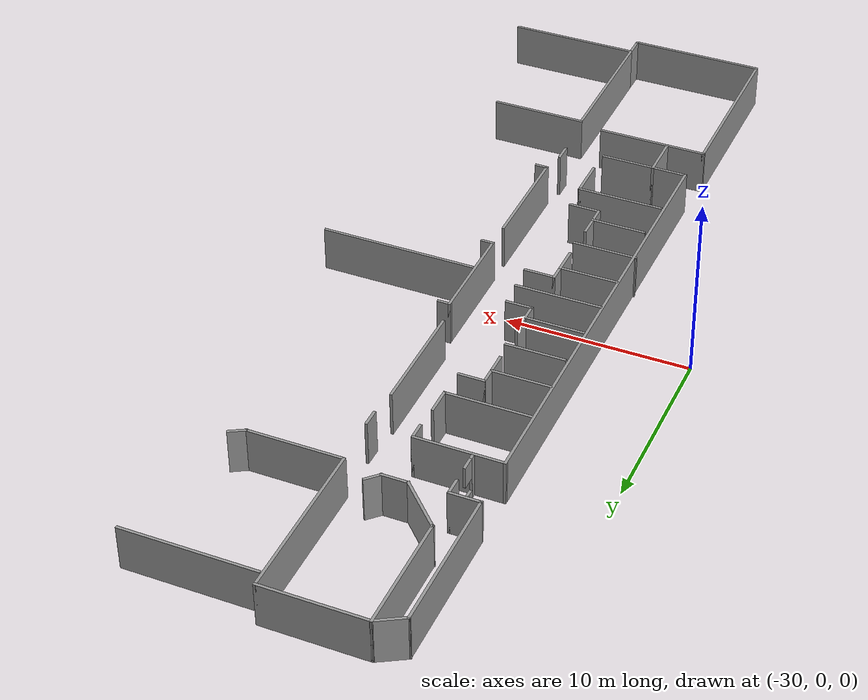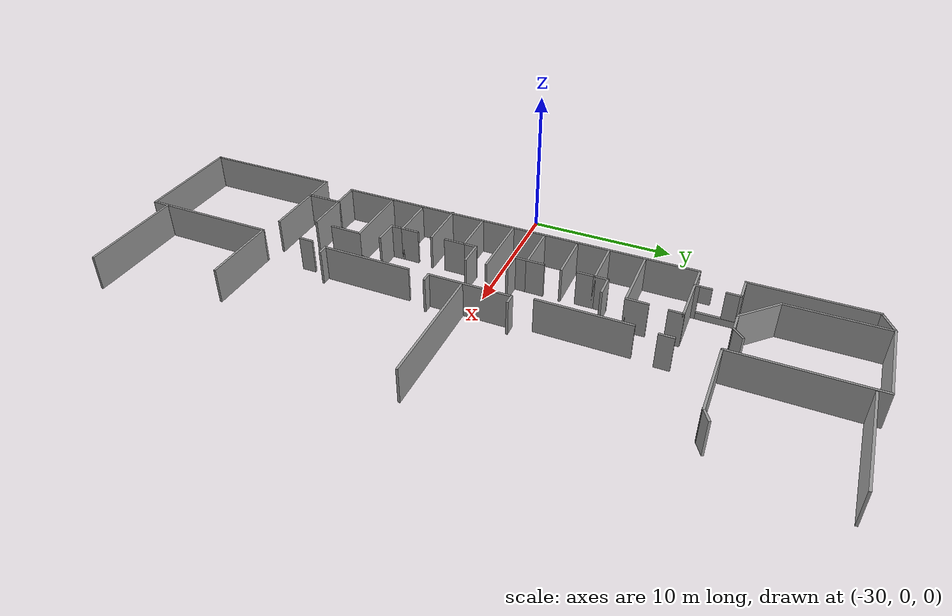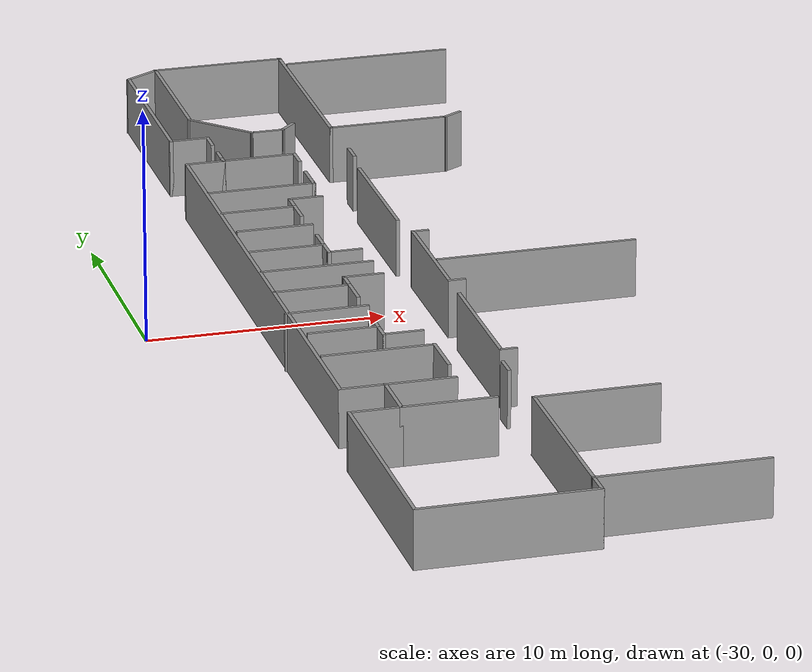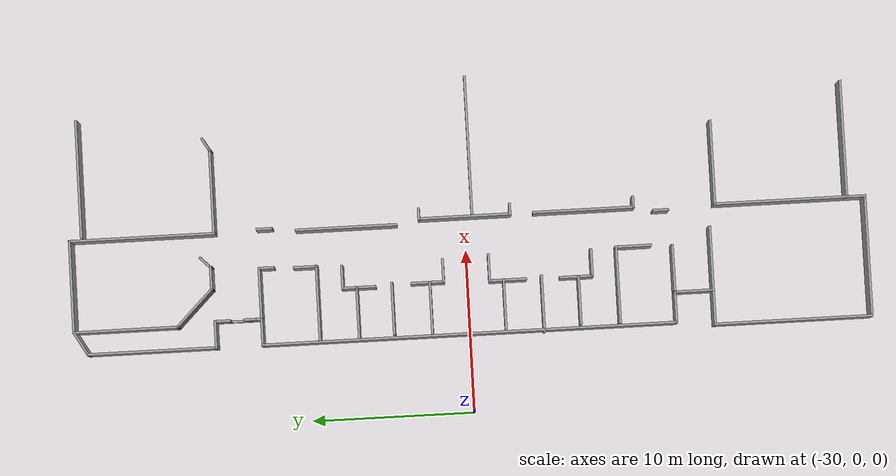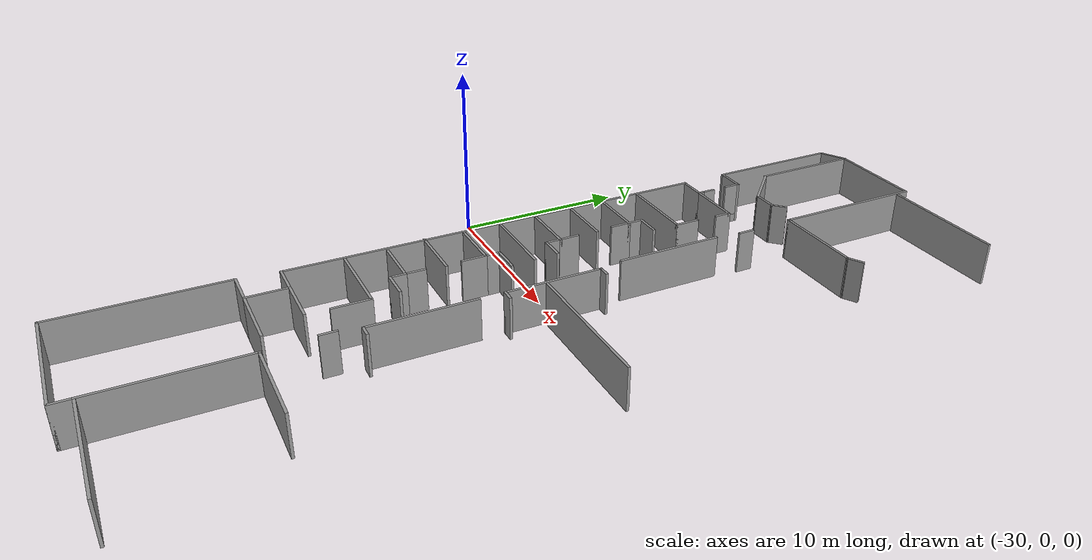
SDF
<sdf version="1.6">
 <model name="Untitled">
  <pose>-0.441057 -0.068194 0 0 -0 0</pose>
  <link name="Wall_268">
   <collision name="Wall_268_Collision">
    <geometry><box><size>1.75 0.15 2.5</size></box></geometry>
    <pose>0 0 1.25 0 -0 0</pose>
   </collision>
   <visual name="Wall_268_Visual">
    <pose>0 0 1.25 0 -0 0</pose>
    <geometry><box><size>1.75 0.15 2.5</size></box></geometry>
    <material>
     <script><uri>file://media/materials/scripts/gazebo.material</uri><name>Gazebo/Grey</name></script>
     <ambient>1 1 1 1</ambient>
    </material>
    <meta><layer>0</layer></meta>
   </visual>
   <pose>-23.9648 12.7736 0 0 -0 3.14159</pose>
  </link>
  <link name="Wall_269">
   <collision name="Wall_269_Collision">
    <geometry><box><size>25.5 0.15 2.5</size></box></geometry>
    <pose>0 0 1.25 0 -0 0</pose>
   </collision>
   <visual name="Wall_269_Visual">
    <pose>0 0 1.25 0 -0 0</pose>
    <geometry><box><size>25.5 0.15 2.5</size></box></geometry>
    <material>
     <script><uri>file://media/materials/scripts/gazebo.material</uri><name>Gazebo/Grey</name></script>
     <ambient>1 1 1 1</ambient>
    </material>
    <meta><layer>0</layer></meta>
   </visual>
   <pose>-24.7648 0.098619 0 0 -0 -1.5708</pose>
  </link>
  <link name="Wall_270">
   <collision name="Wall_270_Collision">
    <geometry><box><size>2 0.15 2.5</size></box></geometry>
    <pose>0 0 1.25 0 -0 0</pose>
   </collision>
   <visual name="Wall_270_Visual">
    <pose>0 0 1.25 0 -0 0</pose>
    <geometry><box><size>2 0.15 2.5</size></box></geometry>
    <material>
     <script><uri>file://media/materials/scripts/gazebo.material</uri><name>Gazebo/Grey</name></script>
     <ambient>1 1 1 1</ambient>
    </material>
    <meta><layer>0</layer></meta>
   </visual>
   <pose>-23.8398 -12.5764 0 0 -0 0</pose>
  </link>
  <link name="Wall_272">
   <collision name="Wall_272_Collision">
    <geometry><box><size>2.5 0.15 2.5</size></box></geometry>
    <pose>0 0 1.25 0 -0 0</pose>
   </collision>
   <visual name="Wall_272_Visual">
    <pose>0 0 1.25 0 -0 0</pose>
    <geometry><box><size>2.5 0.15 2.5</size></box></geometry>
    <material>
     <script><uri>file://media/materials/scripts/gazebo.material</uri><name>Gazebo/Grey</name></script>
     <ambient>1 1 1 1</ambient>
    </material>
    <meta><layer>0</layer></meta>
   </visual>
   <pose>-22.9148 -13.7514 0 0 -0 -1.5708</pose>
  </link>
  <link name="Wall_273">
   <collision name="Wall_273_Collision">
    <geometry><box><size>2.25 0.15 2.5</size></box></geometry>
    <pose>0 0 1.25 0 -0 0</pose>
   </collision>
   <visual name="Wall_273_Visual">
    <pose>0 0 1.25 0 -0 0</pose>
    <geometry><box><size>2.25 0.15 2.5</size></box></geometry>
    <material>
     <script><uri>file://media/materials/scripts/gazebo.material</uri><name>Gazebo/Grey</name></script>
     <ambient>1 1 1 1</ambient>
    </material>
    <meta><layer>0</layer></meta>
   </visual>
   <pose>-23.9648 -14.9264 0 0 -0 3.14159</pose>
  </link>
  <link name="Wall_274">
   <collision name="Wall_274_Collision">
    <geometry><box><size>9.75 0.15 2.5</size></box></geometry>
    <pose>0 0 1.25 0 -0 0</pose>
   </collision>
   <visual name="Wall_274_Visual">
    <pose>0 0 1.25 0 -0 0</pose>
    <geometry><box><size>9.75 0.15 2.5</size></box></geometry>
    <material>
     <script><uri>file://media/materials/scripts/gazebo.material</uri><name>Gazebo/Grey</name></script>
     <ambient>1 1 1 1</ambient>
    </material>
    <meta><layer>0</layer></meta>
   </visual>
   <pose>-25.0148 -19.7264 0 0 -0 -1.5708</pose>
  </link>
  <link name="Wall_276">
   <collision name="Wall_276_Collision">
    <geometry><box><size>7.5 0.15 2.5</size></box></geometry>
    <pose>0 0 1.25 0 -0 0</pose>
   </collision>
   <visual name="Wall_276_Visual">
    <pose>0 0 1.25 0 -0 0</pose>
    <geometry><box><size>7.5 0.15 2.5</size></box></geometry>
    <material>
     <script><uri>file://media/materials/scripts/gazebo.material</uri><name>Gazebo/Grey</name></script>
     <ambient>1 1 1 1</ambient>
    </material>
    <meta><layer>0</layer></meta>
   </visual>
   <pose>-21.3398 -24.5264 0 0 -0 0</pose>
  </link>
  <link name="Wall_277">
   <collision name="Wall_277_Collision">
    <geometry><box><size>1.25 0.15 2.5</size></box></geometry>
    <pose>0 0 1.25 0 -0 0</pose>
   </collision>
   <visual name="Wall_277_Visual">
    <pose>0 0 1.25 0 -0 0</pose>
    <geometry><box><size>1.25 0.15 2.5</size></box></geometry>
    <material>
     <script><uri>file://media/materials/scripts/gazebo.material</uri><name>Gazebo/Grey</name></script>
     <ambient>1 1 1 1</ambient>
    </material>
    <meta><layer>0</layer></meta>
   </visual>
   <pose>-17.6648 -23.9764 0 0 -0 1.5708</pose>
  </link>
  <link name="Wall_278">
   <collision name="Wall_278_Collision">
    <geometry><box><size>7.25 0.15 2.5</size></box></geometry>
    <pose>0 0 1.25 0 -0 0</pose>
   </collision>
   <visual name="Wall_278_Visual">
    <pose>0 0 1.25 0 -0 0</pose>
    <geometry><box><size>7.25 0.15 2.5</size></box></geometry>
    <material>
     <script><uri>file://media/materials/scripts/gazebo.material</uri><name>Gazebo/Grey</name></script>
     <ambient>1 1 1 1</ambient>
    </material>
    <meta><layer>0</layer></meta>
   </visual>
   <pose>-14.1148 -23.4264 0 0 -0 0</pose>
  </link>
  <link name="Wall_333">
   <collision name="Wall_333_Collision">
    <geometry><box><size>8.25 0.15 2.5</size></box></geometry>
    <pose>0 0 1.25 0 -0 0</pose>
   </collision>
   <visual name="Wall_333_Visual">
    <pose>0 0 1.25 0 -0 0</pose>
    <geometry><box><size>8.25 0.15 2.5</size></box></geometry>
    <material>
     <script><uri>file://media/materials/scripts/gazebo.material</uri><name>Gazebo/Grey</name></script>
     <ambient>1 1 1 1</ambient>
    </material>
    <meta><layer>0</layer></meta>
   </visual>
   <pose>-17.6648 -19.3764 0 0 -0 1.5708</pose>
  </link>
  <link name="Wall_334">
   <collision name="Wall_334_Collision">
    <geometry><box><size>5.25 0.15 2.5</size></box></geometry>
    <pose>0 0 1.25 0 -0 0</pose>
   </collision>
   <visual name="Wall_334_Visual">
    <pose>0 0 1.25 0 -0 0</pose>
    <geometry><box><size>5.25 0.15 2.5</size></box></geometry>
    <material>
     <script><uri>file://media/materials/scripts/gazebo.material</uri><name>Gazebo/Grey</name></script>
     <ambient>1 1 1 1</ambient>
    </material>
    <meta><layer>0</layer></meta>
   </visual>
   <pose>-15.1148 -15.3264 0 0 -0 0</pose>
  </link>
  <link name="Wall_336">
   <collision name="Wall_336_Collision">
    <geometry><box><size>4 0.15 2.5</size></box></geometry>
    <pose>0 0 1.25 0 -0 0</pose>
   </collision>
   <visual name="Wall_336_Visual">
    <pose>0 0 1.25 0 -0 0</pose>
    <geometry><box><size>4 0.15 2.5</size></box></geometry>
    <material>
     <script><uri>file://media/materials/scripts/gazebo.material</uri><name>Gazebo/Grey</name></script>
     <ambient>1 1 1 1</ambient>
    </material>
    <meta><layer>0</layer></meta>
   </visual>
   <pose>-20.9898 -14.9264 0 0 -0 0</pose>
  </link>
  <link name="Wall_346">
   <collision name="Wall_346_Collision">
    <geometry><box><size>1 0.15 2.5</size></box></geometry>
    <pose>0 0 1.25 0 -0 0</pose>
   </collision>
   <visual name="Wall_346_Visual">
    <pose>0 0 1.25 0 -0 0</pose>
    <geometry><box><size>1 0.15 2.5</size></box></geometry>
    <material>
     <script><uri>file://media/materials/scripts/gazebo.material</uri><name>Gazebo/Grey</name></script>
     <ambient>1 1 1 1</ambient>
    </material>
    <meta><layer>0</layer></meta>
   </visual>
   <pose>-17.8511 -11.9941 0 0 -0 -1.5708</pose>
  </link>
  <link name="Wall_350">
   <collision name="Wall_350_Collision">
    <geometry><box><size>3 0.15 2.5</size></box></geometry>
    <pose>0 0 1.25 0 -0 0</pose>
   </collision>
   <visual name="Wall_350_Visual">
    <pose>0 0 1.25 0 -0 0</pose>
    <geometry><box><size>3 0.15 2.5</size></box></geometry>
    <material>
     <script><uri>file://media/materials/scripts/gazebo.material</uri><name>Gazebo/Grey</name></script>
     <ambient>1 1 1 1</ambient>
    </material>
    <meta><layer>0</layer></meta>
   </visual>
   <pose>-21.4898 -12.5764 0 0 -0 0</pose>
  </link>
  <link name="Wall_352">
   <collision name="Wall_352_Collision">
    <geometry><box><size>4.75 0.15 2.5</size></box></geometry>
    <pose>0 0 1.25 0 -0 0</pose>
   </collision>
   <visual name="Wall_352_Visual">
    <pose>0 0 1.25 0 -0 0</pose>
    <geometry><box><size>4.75 0.15 2.5</size></box></geometry>
    <material>
     <script><uri>file://media/materials/scripts/gazebo.material</uri><name>Gazebo/Grey</name></script>
     <ambient>1 1 1 1</ambient>
    </material>
    <meta><layer>0</layer></meta>
   </visual>
   <pose>-22.2641 -9.1343 0 0 -0 0</pose>
  </link>
  <link name="Wall_353">
   <collision name="Wall_353_Collision">
    <geometry><box><size>2.25 0.15 2.5</size></box></geometry>
    <pose>0 0 1.25 0 -0 0</pose>
   </collision>
   <visual name="Wall_353_Visual">
    <pose>0 0 1.25 0 -0 0</pose>
    <geometry><box><size>2.25 0.15 2.5</size></box></geometry>
    <material>
     <script><uri>file://media/materials/scripts/gazebo.material</uri><name>Gazebo/Grey</name></script>
     <ambient>1 1 1 1</ambient>
    </material>
    <meta><layer>0</layer></meta>
   </visual>
   <pose>-19.9641 -10.1843 0 0 -0 -1.5708</pose>
  </link>
  <link name="Wall_355">
   <collision name="Wall_355_Collision">
    <geometry><box><size>3 0.15 2.5</size></box></geometry>
    <pose>0 0 1.25 0 -0 0</pose>
   </collision>
   <visual name="Wall_355_Visual">
    <pose>0 0 1.25 0 -0 0</pose>
    <geometry><box><size>3 0.15 2.5</size></box></geometry>
    <material>
     <script><uri>file://media/materials/scripts/gazebo.material</uri><name>Gazebo/Grey</name></script>
     <ambient>1 1 1 1</ambient>
    </material>
    <meta><layer>0</layer></meta>
   </visual>
   <pose>-23.0695 -6.7343 0 0 -0 0</pose>
  </link>
  <link name="Wall_356">
   <collision name="Wall_356_Collision">
    <geometry><box><size>1.25 0.15 2.5</size></box></geometry>
    <pose>0 0 1.25 0 -0 0</pose>
   </collision>
   <visual name="Wall_356_Visual">
    <pose>0 0 1.25 0 -0 0</pose>
    <geometry><box><size>1.25 0.15 2.5</size></box></geometry>
    <material>
     <script><uri>file://media/materials/scripts/gazebo.material</uri><name>Gazebo/Grey</name></script>
     <ambient>1 1 1 1</ambient>
    </material>
    <meta><layer>0</layer></meta>
   </visual>
   <pose>-21.6445 -6.1843 0 0 -0 1.5708</pose>
  </link>
  <link name="Wall_358">
   <collision name="Wall_358_Collision">
    <geometry><box><size>1 0.15 2.5</size></box></geometry>
    <pose>0 0 1.25 0 -0 0</pose>
   </collision>
   <visual name="Wall_358_Visual">
    <pose>0 0 1.25 0 -0 0</pose>
    <geometry><box><size>1 0.15 2.5</size></box></geometry>
    <material>
     <script><uri>file://media/materials/scripts/gazebo.material</uri><name>Gazebo/Grey</name></script>
     <ambient>1 1 1 1</ambient>
    </material>
    <meta><layer>0</layer></meta>
   </visual>
   <pose>-21.6445 -7.1593 0 0 -0 -1.5708</pose>
  </link>
  <link name="Wall_359">
   <collision name="Wall_359_Collision">
    <geometry><box><size>1.75 0.15 2.5</size></box></geometry>
    <pose>0 0 1.25 0 -0 0</pose>
   </collision>
   <visual name="Wall_359_Visual">
    <pose>0 0 1.25 0 -0 0</pose>
    <geometry><box><size>1.75 0.15 2.5</size></box></geometry>
    <material>
     <script><uri>file://media/materials/scripts/gazebo.material</uri><name>Gazebo/Grey</name></script>
     <ambient>1 1 1 1</ambient>
    </material>
    <meta><layer>0</layer></meta>
   </visual>
   <pose>-20.8445 -7.5843 0 0 -0 0</pose>
  </link>
  <link name="Wall_361">
   <collision name="Wall_361_Collision">
    <geometry><box><size>6.25 0.15 2.5</size></box></geometry>
    <pose>0 0 1.25 0 -0 0</pose>
   </collision>
   <visual name="Wall_361_Visual">
    <pose>0 0 1.25 0 -0 0</pose>
    <geometry><box><size>6.25 0.15 2.5</size></box></geometry>
    <material>
     <script><uri>file://media/materials/scripts/gazebo.material</uri><name>Gazebo/Grey</name></script>
     <ambient>1 1 1 1</ambient>
    </material>
    <meta><layer>0</layer></meta>
   </visual>
   <pose>-17.5728 -7.27995 0 0 -0 -1.5708</pose>
  </link>
  <link name="Wall_362">
   <collision name="Wall_362_Collision">
    <geometry><box><size>0.75 0.15 2.5</size></box></geometry>
    <pose>0 0 1.25 0 -0 0</pose>
   </collision>
   <visual name="Wall_362_Visual">
    <pose>0 0 1.25 0 -0 0</pose>
    <geometry><box><size>0.75 0.15 2.5</size></box></geometry>
    <material>
     <script><uri>file://media/materials/scripts/gazebo.material</uri><name>Gazebo/Grey</name></script>
     <ambient>1 1 1 1</ambient>
    </material>
    <meta><layer>0</layer></meta>
   </visual>
   <pose>-17.2728 -10.33 0 0 -0 0</pose>
  </link>
  <link name="Wall_367">
   <collision name="Wall_367_Collision">
    <geometry><box><size>3.5 0.15 2.5</size></box></geometry>
    <pose>0 0 1.25 0 -0 0</pose>
   </collision>
   <visual name="Wall_367_Visual">
    <pose>0 0 1.25 0 -0 0</pose>
    <geometry><box><size>3.5 0.15 2.5</size></box></geometry>
    <material>
     <script><uri>file://media/materials/scripts/gazebo.material</uri><name>Gazebo/Grey</name></script>
     <ambient>1 1 1 1</ambient>
    </material>
    <meta><layer>0</layer></meta>
   </visual>
   <pose>-23.1674 -4.47343 0 0 -0 0</pose>
  </link>
  <link name="Wall_369">
   <collision name="Wall_369_Collision">
    <geometry><box><size>3.25 0.15 2.5</size></box></geometry>
    <pose>0 0 1.25 0 -0 0</pose>
   </collision>
   <visual name="Wall_369_Visual">
    <pose>0 0 1.25 0 -0 0</pose>
    <geometry><box><size>3.25 0.15 2.5</size></box></geometry>
    <material>
     <script><uri>file://media/materials/scripts/gazebo.material</uri><name>Gazebo/Grey</name></script>
     <ambient>1 1 1 1</ambient>
    </material>
    <meta><layer>0</layer></meta>
   </visual>
   <pose>-23.1532 -2.14299 0 0 -0 0</pose>
  </link>
  <link name="Wall_370">
   <collision name="Wall_370_Collision">
    <geometry><box><size>1.5 0.15 2.5</size></box></geometry>
    <pose>0 0 1.25 0 -0 0</pose>
   </collision>
   <visual name="Wall_370_Visual">
    <pose>0 0 1.25 0 -0 0</pose>
    <geometry><box><size>1.5 0.15 2.5</size></box></geometry>
    <material>
     <script><uri>file://media/materials/scripts/gazebo.material</uri><name>Gazebo/Grey</name></script>
     <ambient>1 1 1 1</ambient>
    </material>
    <meta><layer>0</layer></meta>
   </visual>
   <pose>-21.6032 -2.81799 0 0 -0 -1.5708</pose>
  </link>
  <link name="Wall_372">
   <collision name="Wall_372_Collision">
    <geometry><box><size>1 0.15 2.5</size></box></geometry>
    <pose>0 0 1.25 0 -0 0</pose>
   </collision>
   <visual name="Wall_372_Visual">
    <pose>0 0 1.25 0 -0 0</pose>
    <geometry><box><size>1 0.15 2.5</size></box></geometry>
    <material>
     <script><uri>file://media/materials/scripts/gazebo.material</uri><name>Gazebo/Grey</name></script>
     <ambient>1 1 1 1</ambient>
    </material>
    <meta><layer>0</layer></meta>
   </visual>
   <pose>-21.6032 -1.71799 0 0 -0 1.5708</pose>
  </link>
  <link name="Wall_373">
   <collision name="Wall_373_Collision">
    <geometry><box><size>1.75 0.15 2.5</size></box></geometry>
    <pose>0 0 1.25 0 -0 0</pose>
   </collision>
   <visual name="Wall_373_Visual">
    <pose>0 0 1.25 0 -0 0</pose>
    <geometry><box><size>1.75 0.15 2.5</size></box></geometry>
    <material>
     <script><uri>file://media/materials/scripts/gazebo.material</uri><name>Gazebo/Grey</name></script>
     <ambient>1 1 1 1</ambient>
    </material>
    <meta><layer>0</layer></meta>
   </visual>
   <pose>-20.8032 -1.29299 0 0 -0 0</pose>
  </link>
  <link name="Wall_375">
   <collision name="Wall_375_Collision">
    <geometry><box><size>4.75 0.15 2.5</size></box></geometry>
    <pose>0 0 1.25 0 -0 0</pose>
   </collision>
   <visual name="Wall_375_Visual">
    <pose>0 0 1.25 0 -0 0</pose>
    <geometry><box><size>4.75 0.15 2.5</size></box></geometry>
    <material>
     <script><uri>file://media/materials/scripts/gazebo.material</uri><name>Gazebo/Grey</name></script>
     <ambient>1 1 1 1</ambient>
    </material>
    <meta><layer>0</layer></meta>
   </visual>
   <pose>-22.3685 0.117874 0 0 -0 0</pose>
  </link>
  <link name="Wall_377">
   <collision name="Wall_377_Collision">
    <geometry><box><size>3.25 0.15 2.5</size></box></geometry>
    <pose>0 0 1.25 0 -0 0</pose>
   </collision>
   <visual name="Wall_377_Visual">
    <pose>0 0 1.25 0 -0 0</pose>
    <geometry><box><size>3.25 0.15 2.5</size></box></geometry>
    <material>
     <script><uri>file://media/materials/scripts/gazebo.material</uri><name>Gazebo/Grey</name></script>
     <ambient>1 1 1 1</ambient>
    </material>
    <meta><layer>0</layer></meta>
   </visual>
   <pose>-23.0489 2.37874 0 0 -0 0</pose>
  </link>
  <link name="Wall_378">
   <collision name="Wall_378_Collision">
    <geometry><box><size>1.25 0.15 2.5</size></box></geometry>
    <pose>0 0 1.25 0 -0 0</pose>
   </collision>
   <visual name="Wall_378_Visual">
    <pose>0 0 1.25 0 -0 0</pose>
    <geometry><box><size>1.25 0.15 2.5</size></box></geometry>
    <material>
     <script><uri>file://media/materials/scripts/gazebo.material</uri><name>Gazebo/Grey</name></script>
     <ambient>1 1 1 1</ambient>
    </material>
    <meta><layer>0</layer></meta>
   </visual>
   <pose>-21.4989 2.92874 0 0 -0 1.5708</pose>
  </link>
  <link name="Wall_380">
   <collision name="Wall_380_Collision">
    <geometry><box><size>1 0.15 2.5</size></box></geometry>
    <pose>0 0 1.25 0 -0 0</pose>
   </collision>
   <visual name="Wall_380_Visual">
    <pose>0 0 1.25 0 -0 0</pose>
    <geometry><box><size>1 0.15 2.5</size></box></geometry>
    <material>
     <script><uri>file://media/materials/scripts/gazebo.material</uri><name>Gazebo/Grey</name></script>
     <ambient>1 1 1 1</ambient>
    </material>
    <meta><layer>0</layer></meta>
   </visual>
   <pose>-21.4989 1.95374 0 0 -0 -1.5708</pose>
  </link>
  <link name="Wall_381">
   <collision name="Wall_381_Collision">
    <geometry><box><size>1.5 0.15 2.5</size></box></geometry>
    <pose>0 0 1.25 0 -0 0</pose>
   </collision>
   <visual name="Wall_381_Visual">
    <pose>0 0 1.25 0 -0 0</pose>
    <geometry><box><size>1.5 0.15 2.5</size></box></geometry>
    <material>
     <script><uri>file://media/materials/scripts/gazebo.material</uri><name>Gazebo/Grey</name></script>
     <ambient>1 1 1 1</ambient>
    </material>
    <meta><layer>0</layer></meta>
   </visual>
   <pose>-20.8239 1.52874 0 0 -0 0</pose>
  </link>
  <link name="Wall_383">
   <collision name="Wall_383_Collision">
    <geometry><box><size>3.25 0.15 2.5</size></box></geometry>
    <pose>0 0 1.25 0 -0 0</pose>
   </collision>
   <visual name="Wall_383_Visual">
    <pose>0 0 1.25 0 -0 0</pose>
    <geometry><box><size>3.25 0.15 2.5</size></box></geometry>
    <material>
     <script><uri>file://media/materials/scripts/gazebo.material</uri><name>Gazebo/Grey</name></script>
     <ambient>1 1 1 1</ambient>
    </material>
    <meta><layer>0</layer></meta>
   </visual>
   <pose>-22.9793 4.70918 0 0 -0 0</pose>
  </link>
  <link name="Wall_385">
   <collision name="Wall_385_Collision">
    <geometry><box><size>3.25 0.15 2.5</size></box></geometry>
    <pose>0 0 1.25 0 -0 0</pose>
   </collision>
   <visual name="Wall_385_Visual">
    <pose>0 0 1.25 0 -0 0</pose>
    <geometry><box><size>3.25 0.15 2.5</size></box></geometry>
    <material>
     <script><uri>file://media/materials/scripts/gazebo.material</uri><name>Gazebo/Grey</name></script>
     <ambient>1 1 1 1</ambient>
    </material>
    <meta><layer>0</layer></meta>
   </visual>
   <pose>-23.1185 6.8657 0 0 -0 0</pose>
  </link>
  <link name="Wall_386">
   <collision name="Wall_386_Collision">
    <geometry><box><size>1 0.15 2.5</size></box></geometry>
    <pose>0 0 1.25 0 -0 0</pose>
   </collision>
   <visual name="Wall_386_Visual">
    <pose>0 0 1.25 0 -0 0</pose>
    <geometry><box><size>1 0.15 2.5</size></box></geometry>
    <material>
     <script><uri>file://media/materials/scripts/gazebo.material</uri><name>Gazebo/Grey</name></script>
     <ambient>1 1 1 1</ambient>
    </material>
    <meta><layer>0</layer></meta>
   </visual>
   <pose>-21.5685 7.2907 0 0 -0 1.5708</pose>
  </link>
  <link name="Wall_387">
   <collision name="Wall_387_Collision">
    <geometry><box><size>1.5 0.15 2.5</size></box></geometry>
    <pose>0 0 1.25 0 -0 0</pose>
   </collision>
   <visual name="Wall_387_Visual">
    <pose>0 0 1.25 0 -0 0</pose>
    <geometry><box><size>1.5 0.15 2.5</size></box></geometry>
    <material>
     <script><uri>file://media/materials/scripts/gazebo.material</uri><name>Gazebo/Grey</name></script>
     <ambient>1 1 1 1</ambient>
    </material>
    <meta><layer>0</layer></meta>
   </visual>
   <pose>-20.8935 7.7157 0 0 -0 0</pose>
  </link>
  <link name="Wall_389">
   <collision name="Wall_389_Collision">
    <geometry><box><size>1.25 0.15 2.5</size></box></geometry>
    <pose>0 0 1.25 0 -0 0</pose>
   </collision>
   <visual name="Wall_389_Visual">
    <pose>0 0 1.25 0 -0 0</pose>
    <geometry><box><size>1.25 0.15 2.5</size></box></geometry>
    <material>
     <script><uri>file://media/materials/scripts/gazebo.material</uri><name>Gazebo/Grey</name></script>
     <ambient>1 1 1 1</ambient>
    </material>
    <meta><layer>0</layer></meta>
   </visual>
   <pose>-21.5685 6.3157 0 0 -0 -1.5708</pose>
  </link>
  <link name="Wall_393">
   <collision name="Wall_393_Collision">
    <geometry><box><size>4.75 0.15 2.5</size></box></geometry>
    <pose>0 0 1.25 0 -0 0</pose>
   </collision>
   <visual name="Wall_393_Visual">
    <pose>0 0 1.25 0 -0 0</pose>
    <geometry><box><size>4.75 0.15 2.5</size></box></geometry>
    <material>
     <script><uri>file://media/materials/scripts/gazebo.material</uri><name>Gazebo/Grey</name></script>
     <ambient>1 1 1 1</ambient>
    </material>
    <meta><layer>0</layer></meta>
   </visual>
   <pose>-22.438 9.2657 0 0 -0 0</pose>
  </link>
  <link name="Wall_394">
   <collision name="Wall_394_Collision">
    <geometry><box><size>1.5 0.15 2.5</size></box></geometry>
    <pose>0 0 1.25 0 -0 0</pose>
   </collision>
   <visual name="Wall_394_Visual">
    <pose>0 0 1.25 0 -0 0</pose>
    <geometry><box><size>1.5 0.15 2.5</size></box></geometry>
    <material>
     <script><uri>file://media/materials/scripts/gazebo.material</uri><name>Gazebo/Grey</name></script>
     <ambient>1 1 1 1</ambient>
    </material>
    <meta><layer>0</layer></meta>
   </visual>
   <pose>-20.138 9.9407 0 0 -0 1.5708</pose>
  </link>
  <link name="Wall_396">
   <collision name="Wall_396_Collision">
    <geometry><box><size>3.25 0.15 2.5</size></box></geometry>
    <pose>0 0 1.25 0 -0 0</pose>
   </collision>
   <visual name="Wall_396_Visual">
    <pose>0 0 1.25 0 -0 0</pose>
    <geometry><box><size>3.25 0.15 2.5</size></box></geometry>
    <material>
     <script><uri>file://media/materials/scripts/gazebo.material</uri><name>Gazebo/Grey</name></script>
     <ambient>1 1 1 1</ambient>
    </material>
    <meta><layer>0</layer></meta>
   </visual>
   <pose>-21.6148 12.7736 0 0 -0 0</pose>
  </link>
  <link name="Wall_400">
   <collision name="Wall_400_Collision">
    <geometry><box><size>1 0.15 2.5</size></box></geometry>
    <pose>0 0 1.25 0 -0 0</pose>
   </collision>
   <visual name="Wall_400_Visual">
    <pose>0 0 1.25 0 -0 0</pose>
    <geometry><box><size>1 0.15 2.5</size></box></geometry>
    <material>
     <script><uri>file://media/materials/scripts/gazebo.material</uri><name>Gazebo/Grey</name></script>
     <ambient>1 1 1 1</ambient>
    </material>
    <meta><layer>0</layer></meta>
   </visual>
   <pose>-20.0648 12.3486 0 0 -0 -1.5708</pose>
  </link>
  <link name="Wall_402">
   <pose>-23.1648 14.1986 0 0 -0 1.5708</pose>
   <visual name="Wall_402_Visual_0">
    <pose>-1.29472 0 1.25 0 -0 0</pose>
    <geometry><box><size>0.41056 0.15 2.5</size></box></geometry>
    <material>
     <script><uri>file://media/materials/scripts/gazebo.material</uri><name>Gazebo/Grey</name></script>
     <ambient>1 1 1 1</ambient>
    </material>
    <meta><layer>0</layer></meta>
   </visual>
   <collision name="Wall_402_Collision_0">
    <geometry><box><size>0.41056 0.15 2.5</size></box></geometry>
    <pose>-1.29472 0 1.25 0 -0 0</pose>
   </collision>
   <visual name="Wall_402_Visual_1">
    <pose>0.20528 0 0.25 0 -0 0</pose>
    <geometry><box><size>2.58944 0.15 0.5</size></box></geometry>
    <material>
     <script><uri>file://media/materials/scripts/gazebo.material</uri><name>Gazebo/Grey</name></script>
     <ambient>1 1 1 1</ambient>
    </material>
    <meta><layer>0</layer></meta>
   </visual>
   <collision name="Wall_402_Collision_1">
    <geometry><box><size>2.58944 0.15 0.5</size></box></geometry>
    <pose>0.20528 0 0.25 0 -0 0</pose>
   </collision>
   <visual name="Wall_402_Visual_2">
    <pose>0.987889 0 1.5 0 -0 0</pose>
    <geometry><box><size>1.02422 0.15 2</size></box></geometry>
    <material>
     <script><uri>file://media/materials/scripts/gazebo.material</uri><name>Gazebo/Grey</name></script>
     <ambient>1 1 1 1</ambient>
    </material>
    <meta><layer>0</layer></meta>
   </visual>
   <collision name="Wall_402_Collision_2">
    <geometry><box><size>1.02422 0.15 2</size></box></geometry>
    <pose>0.987889 0 1.5 0 -0 0</pose>
   </collision>
   <visual name="Wall_402_Visual_3">
    <pose>-0.706831 0 1.9 0 -0 0</pose>
    <geometry><box><size>0.765217 0.15 1.2</size></box></geometry>
    <material>
     <script><uri>file://media/materials/scripts/gazebo.material</uri><name>Gazebo/Grey</name></script>
     <ambient>1 1 1 1</ambient>
    </material>
    <meta><layer>0</layer></meta>
   </visual>
   <collision name="Wall_402_Collision_3">
    <geometry><box><size>0.765217 0.15 1.2</size></box></geometry>
    <pose>-0.706831 0 1.9 0 -0 0</pose>
   </collision>
  </link>
  <link name="Wall_403">
   <collision name="Wall_403_Collision">
    <geometry><box><size>1.75 0.15 2.5</size></box></geometry>
    <pose>0 0 1.25 0 -0 0</pose>
   </collision>
   <visual name="Wall_403_Visual">
    <pose>0 0 1.25 0 -0 0</pose>
    <geometry><box><size>1.75 0.15 2.5</size></box></geometry>
    <material>
     <script><uri>file://media/materials/scripts/gazebo.material</uri><name>Gazebo/Grey</name></script>
     <ambient>1 1 1 1</ambient>
    </material>
    <meta><layer>0</layer></meta>
   </visual>
   <pose>-23.9648 15.6236 0 0 -0 3.14159</pose>
  </link>
  <link name="Wall_405">
   <collision name="Wall_405_Collision">
    <geometry><box><size>8 0.15 2.5</size></box></geometry>
    <pose>0 0 1.25 0 -0 0</pose>
   </collision>
   <visual name="Wall_405_Visual">
    <pose>0 0 1.25 0 -0 0</pose>
    <geometry><box><size>8 0.15 2.5</size></box></geometry>
    <material>
     <script><uri>file://media/materials/scripts/gazebo.material</uri><name>Gazebo/Grey</name></script>
     <ambient>1 1 1 1</ambient>
    </material>
    <meta><layer>0</layer></meta>
   </visual>
   <pose>-24.7648 19.5486 0 0 -0 1.5708</pose>
  </link>
  <link name="Wall_406">
   <collision name="Wall_406_Collision">
    <geometry><box><size>1.75 0.15 2.5</size></box></geometry>
    <pose>0 0 1.25 0 -0 0</pose>
   </collision>
   <visual name="Wall_406_Visual">
    <pose>0 0 1.25 0 -0 0</pose>
    <geometry><box><size>1.75 0.15 2.5</size></box></geometry>
    <material>
     <script><uri>file://media/materials/scripts/gazebo.material</uri><name>Gazebo/Grey</name></script>
     <ambient>1 1 1 1</ambient>
    </material>
    <meta><layer>0</layer></meta>
   </visual>
   <pose>-24.072 23.8736 0 0 -0 0.523599</pose>
  </link>
  <link name="Wall_407">
   <collision name="Wall_407_Collision">
    <geometry><box><size>6.5 0.15 2.5</size></box></geometry>
    <pose>0 0 1.25 0 -0 0</pose>
   </collision>
   <visual name="Wall_407_Visual">
    <pose>0 0 1.25 0 -0 0</pose>
    <geometry><box><size>6.5 0.15 2.5</size></box></geometry>
    <material>
     <script><uri>file://media/materials/scripts/gazebo.material</uri><name>Gazebo/Grey</name></script>
     <ambient>1 1 1 1</ambient>
    </material>
    <meta><layer>0</layer></meta>
   </visual>
   <pose>-23.3791 21.0986 0 0 -0 -1.5708</pose>
  </link>
  <link name="Wall_408">
   <collision name="Wall_408_Collision">
    <geometry><box><size>3.25 0.15 2.5</size></box></geometry>
    <pose>0 0 1.25 0 -0 0</pose>
   </collision>
   <visual name="Wall_408_Visual">
    <pose>0 0 1.25 0 -0 0</pose>
    <geometry><box><size>3.25 0.15 2.5</size></box></geometry>
    <material>
     <script><uri>file://media/materials/scripts/gazebo.material</uri><name>Gazebo/Grey</name></script>
     <ambient>1 1 1 1</ambient>
    </material>
    <meta><layer>0</layer></meta>
   </visual>
   <pose>-22.2831 16.8276 0 0 -0 -0.785398</pose>
  </link>
  <link name="Wall_409">
   <collision name="Wall_409_Collision">
    <geometry><box><size>1.5 0.15 2.5</size></box></geometry>
    <pose>0 0 1.25 0 -0 0</pose>
   </collision>
   <visual name="Wall_409_Visual">
    <pose>0 0 1.25 0 -0 0</pose>
    <geometry><box><size>1.5 0.15 2.5</size></box></geometry>
    <material>
     <script><uri>file://media/materials/scripts/gazebo.material</uri><name>Gazebo/Grey</name></script>
     <ambient>1 1 1 1</ambient>
    </material>
    <meta><layer>0</layer></meta>
   </visual>
   <pose>-20.5121 15.7316 0 0 -0 0</pose>
  </link>
  <link name="Wall_410">
   <collision name="Wall_410_Collision">
    <geometry><box><size>1 0.15 2.5</size></box></geometry>
    <pose>0 0 1.25 0 -0 0</pose>
   </collision>
   <visual name="Wall_410_Visual">
    <pose>0 0 1.25 0 -0 0</pose>
    <geometry><box><size>1 0.15 2.5</size></box></geometry>
    <material>
     <script><uri>file://media/materials/scripts/gazebo.material</uri><name>Gazebo/Grey</name></script>
     <ambient>1 1 1 1</ambient>
    </material>
    <meta><layer>0</layer></meta>
   </visual>
   <pose>-19.5366 16.0321 0 0 -0 0.785398</pose>
  </link>
  <link name="Wall_412">
   <collision name="Wall_412_Collision">
    <geometry><box><size>5.75 0.15 2.5</size></box></geometry>
    <pose>0 0 1.25 0 -0 0</pose>
   </collision>
   <visual name="Wall_412_Visual">
    <pose>0 0 1.25 0 -0 0</pose>
    <geometry><box><size>5.75 0.15 2.5</size></box></geometry>
    <material>
     <script><uri>file://media/materials/scripts/gazebo.material</uri><name>Gazebo/Grey</name></script>
     <ambient>1 1 1 1</ambient>
    </material>
    <meta><layer>0</layer></meta>
   </visual>
   <pose>-20.5791 24.2736 0 0 -0 0</pose>
  </link>
  <link name="Wall_413">
   <collision name="Wall_413_Collision">
    <geometry><box><size>9 0.15 2.5</size></box></geometry>
    <pose>0 0 1.25 0 -0 0</pose>
   </collision>
   <visual name="Wall_413_Visual">
    <pose>0 0 1.25 0 -0 0</pose>
    <geometry><box><size>9 0.15 2.5</size></box></geometry>
    <material>
     <script><uri>file://media/materials/scripts/gazebo.material</uri><name>Gazebo/Grey</name></script>
     <ambient>1 1 1 1</ambient>
    </material>
    <meta><layer>0</layer></meta>
   </visual>
   <pose>-17.7791 19.8486 0 0 -0 -1.5708</pose>
  </link>
  <link name="Wall_415">
   <collision name="Wall_415_Collision">
    <geometry><box><size>7.25 0.15 2.5</size></box></geometry>
    <pose>0 0 1.25 0 -0 0</pose>
   </collision>
   <visual name="Wall_415_Visual">
    <pose>0 0 1.25 0 -0 0</pose>
    <geometry><box><size>7.25 0.15 2.5</size></box></geometry>
    <material>
     <script><uri>file://media/materials/scripts/gazebo.material</uri><name>Gazebo/Grey</name></script>
     <ambient>1 1 1 1</ambient>
    </material>
    <meta><layer>0</layer></meta>
   </visual>
   <pose>-14.0228 23.5266 0 0 -0 0</pose>
  </link>
  <link name="Wall_422">
   <collision name="Wall_422_Collision">
    <geometry><box><size>5.25 0.15 2.5</size></box></geometry>
    <pose>0 0 1.25 0 -0 0</pose>
   </collision>
   <visual name="Wall_422_Visual">
    <pose>0 0 1.25 0 -0 0</pose>
    <geometry><box><size>5.25 0.15 2.5</size></box></geometry>
    <material>
     <script><uri>file://media/materials/scripts/gazebo.material</uri><name>Gazebo/Grey</name></script>
     <ambient>1 1 1 1</ambient>
    </material>
    <meta><layer>0</layer></meta>
   </visual>
   <pose>-15.2291 15.4236 0 0 -0 0</pose>
  </link>
  <link name="Wall_423">
   <collision name="Wall_423_Collision">
    <geometry><box><size>1 0.15 2.5</size></box></geometry>
    <pose>0 0 1.25 0 -0 0</pose>
   </collision>
   <visual name="Wall_423_Visual">
    <pose>0 0 1.25 0 -0 0</pose>
    <geometry><box><size>1 0.15 2.5</size></box></geometry>
    <material>
     <script><uri>file://media/materials/scripts/gazebo.material</uri><name>Gazebo/Grey</name></script>
     <ambient>1 1 1 1</ambient>
    </material>
    <meta><layer>0</layer></meta>
   </visual>
   <pose>-12.3111 15.6361 0 0 -0 0.523599</pose>
  </link>
  <link name="Wall_501">
   <collision name="Wall_501_Collision">
    <geometry><box><size>0.75 0.15 2.5</size></box></geometry>
    <pose>0 0 1.25 0 -0 0</pose>
   </collision>
   <visual name="Wall_501_Visual">
    <pose>0 0 1.25 0 -0 0</pose>
    <geometry><box><size>0.75 0.15 2.5</size></box></geometry>
    <material>
     <script><uri>file://media/materials/scripts/gazebo.material</uri><name>Gazebo/Grey</name></script>
     <ambient>1 1 1 1</ambient>
    </material>
    <meta><layer>0</layer></meta>
   </visual>
   <pose>-17.2731 2.83573 0 0 -0 3.14159</pose>
  </link>
  <link name="Wall_502">
   <collision name="Wall_502_Collision">
    <geometry><box><size>5.75 0.15 2.5</size></box></geometry>
    <pose>0 0 1.25 0 -0 0</pose>
   </collision>
   <visual name="Wall_502_Visual">
    <pose>0 0 1.25 0 -0 0</pose>
    <geometry><box><size>5.75 0.15 2.5</size></box></geometry>
    <material>
     <script><uri>file://media/materials/scripts/gazebo.material</uri><name>Gazebo/Grey</name></script>
     <ambient>1 1 1 1</ambient>
    </material>
    <meta><layer>0</layer></meta>
   </visual>
   <pose>-17.5731 0.035729 0 0 -0 -1.5708</pose>
  </link>
  <link name="Wall_503">
   <collision name="Wall_503_Collision">
    <geometry><box><size>0.75 0.15 2.5</size></box></geometry>
    <pose>0 0 1.25 0 -0 0</pose>
   </collision>
   <visual name="Wall_503_Visual">
    <pose>0 0 1.25 0 -0 0</pose>
    <geometry><box><size>0.75 0.15 2.5</size></box></geometry>
    <material>
     <script><uri>file://media/materials/scripts/gazebo.material</uri><name>Gazebo/Grey</name></script>
     <ambient>1 1 1 1</ambient>
    </material>
    <meta><layer>0</layer></meta>
   </visual>
   <pose>-17.2731 -2.76427 0 0 -0 0</pose>
  </link>
  <link name="Wall_510">
   <collision name="Wall_510_Collision">
    <geometry><box><size>8.5 0.15 2.5</size></box></geometry>
    <pose>0 0 1.25 0 -0 0</pose>
   </collision>
   <visual name="Wall_510_Visual">
    <pose>0 0 1.25 0 -0 0</pose>
    <geometry><box><size>8.5 0.15 2.5</size></box></geometry>
    <material>
     <script><uri>file://media/materials/scripts/gazebo.material</uri><name>Gazebo/Grey</name></script>
     <ambient>1 1 1 1</ambient>
    </material>
    <meta><layer>0</layer></meta>
   </visual>
   <pose>-13.2216 -0.430812 0 0 -0 0</pose>
  </link>
  <link name="Wall_533">
   <collision name="Wall_533_Collision">
    <geometry><box><size>6.25 0.15 2.5</size></box></geometry>
    <pose>0 0 1.25 0 -0 0</pose>
   </collision>
   <visual name="Wall_533_Visual">
    <pose>0 0 1.25 0 -0 0</pose>
    <geometry><box><size>6.25 0.15 2.5</size></box></geometry>
    <material>
     <script><uri>file://media/materials/scripts/gazebo.material</uri><name>Gazebo/Grey</name></script>
     <ambient>1 1 1 1</ambient>
    </material>
    <meta><layer>0</layer></meta>
   </visual>
   <pose>-17.8502 7.31692 0 0 -0 -1.5708</pose>
  </link>
  <link name="Wall_547">
   <collision name="Wall_547_Collision">
    <geometry><box><size>1 0.15 2.5</size></box></geometry>
    <pose>0 0 1.25 0 -0 0</pose>
   </collision>
   <visual name="Wall_547_Visual">
    <pose>0 0 1.25 0 -0 0</pose>
    <geometry><box><size>1 0.15 2.5</size></box></geometry>
    <material>
     <script><uri>file://media/materials/scripts/gazebo.material</uri><name>Gazebo/Grey</name></script>
     <ambient>1 1 1 1</ambient>
    </material>
    <meta><layer>0</layer></meta>
   </visual>
   <pose>-17.6688 12.3313 0 0 -0 -1.5708</pose>
  </link>
  <static>1</static>
 </model>
</sdf>
